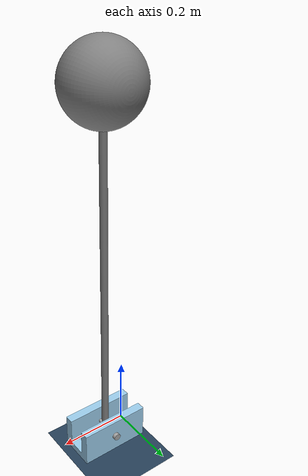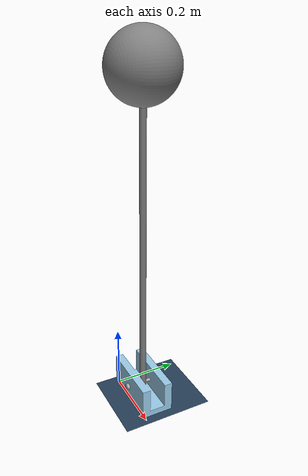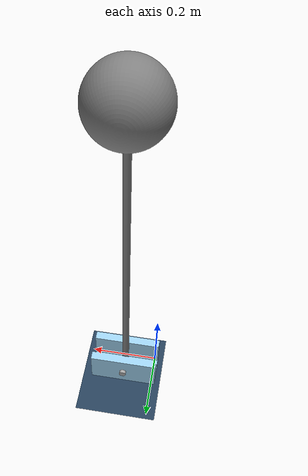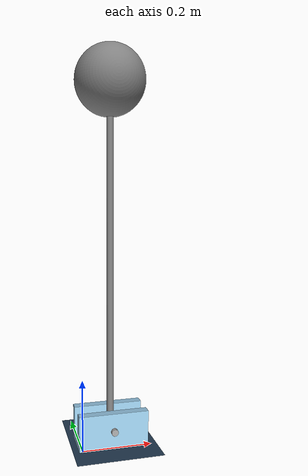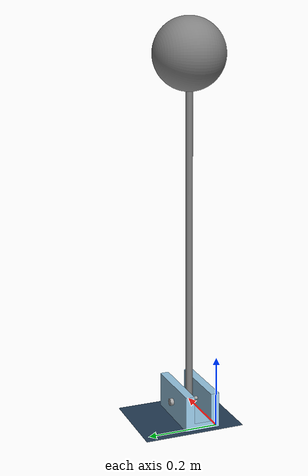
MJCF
<mujoco model="scene">
    <include file="robot.xml" />

    <visual>
        <headlight diffuse="0.6 0.6 0.6" ambient="0.3 0.3 0.3" specular="0 0 0" />
        <rgba haze="0.15 0.25 0.35 1" />
        <global azimuth="160" elevation="-20" />
    </visual>

    <asset>
        <texture type="skybox" builtin="gradient" rgb1="0.3 0.5 0.7" rgb2="0 0 0" width="512"
            height="3072" />
        <texture type="2d" name="groundplane" builtin="checker" mark="edge" rgb1="0.2 0.3 0.4"
            rgb2="0.1 0.2 0.3"
            markrgb="0.8 0.8 0.8" width="300" height="300" />
        <material name="groundplane" texture="groundplane" texuniform="true" texrepeat="5 5"
            reflectance="0.2" />
    </asset>

    <worldbody>
        <light pos="0 0 3.5" dir="0 0 -1" directional="true" />
        <geom name="floor" size="0 0 0.05" pos="0 0 0" type="plane" material="groundplane" contype="2" conaffinity="1"/>
    </worldbody>
</mujoco>

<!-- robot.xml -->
<!-- Generated using onshape-to-robot -->
<!-- Onshape https://cad.onshape.com/documents/2fcf687ab196ebe2e60237ac/w/8b1b349c9f98ae2313201f43/e/1ca3b9a7be0c82e6885a79aa -->
<mujoco model="inv_pendulum">
  <compiler angle="radian" meshdir="assets" autolimits="true"/>
  <default>
    <default class="inv_pendulum">
      <joint frictionloss="0.1" armature="0.005"/>
      <position kp="50" dampratio="1"/>
      <default class="visual">
        <geom type="mesh" contype="0" conaffinity="0" group="2"/>
      </default>
      <default class="collision">
        <geom group="3" contype="0" conaffinity="0"/>
      </default>
    </default>
  </default>
  <worldbody>
    <!-- Link holder -->
    <body name="holder" pos="0 0 0" quat="1 0 0 0" childclass="inv_pendulum">
      <inertial pos="0.09 0.0450675 0.0435425" mass="3.34493" fullinertia="0.00723064 0.0137955 0.0150381 -0 -0 -1.45824e-06"/>
      <!-- Part holder -->
      <geom type="mesh" class="visual" pos="-0.01 -0.005 0" quat="1 0 0 0" mesh="holder" material="holder_material"/>
      <geom type="mesh" class="collision" pos="-0.01 -0.005 0" quat="1 0 0 0" mesh="holder" material="holder_material"/>
      <!-- Part pin -->
      <geom type="mesh" class="visual" pos="0.14 -0.005 -0.05" quat="0.707107 -0 -0.707107 -0" mesh="pin" material="pin_material"/>
      <geom type="mesh" class="collision" pos="0.14 -0.005 -0.05" quat="0.707107 -0 -0.707107 -0" mesh="pin" material="pin_material"/>
      <!-- Link pendulum -->
      <body name="pendulum" pos="0.09 0.045 0.05" quat="0.707107 0.707107 -0 -0">
        <!-- Joint from holder to pendulum -->
        <joint axis="0 0 1" name="pend_pin" type="hinge" range="-50 50"/>
        <inertial pos="1.94e-10 0.945544 -3.57e-10" mass="4.70252" fullinertia="0.120567 0.0176412 0.120567 7.56e-10 -1.32e-10 -1.42e-09"/>
        <!-- Part pendulum -->
        <geom type="mesh" class="visual" pos="0 -0.02 0" quat="0.707107 -0.707107 -0 0" mesh="pendulum" material="pendulum_material"/>
        <geom type="mesh" class="collision" pos="0 -0.02 0" quat="0.707107 -0.707107 -0 0" mesh="pendulum" material="pendulum_material" contype="1" conaffinity="2"/>
      </body>
    </body>
  </worldbody>
  <asset>
    <mesh file="pendulum.stl"/>
    <mesh file="pin.stl"/>
    <mesh file="holder.stl"/>
    <material name="holder_material" rgba="0.615686 0.811765 0.929412 1"/>
    <material name="pin_material" rgba="0.647059 0.647059 0.647059 1"/>
    <material name="pendulum_material" rgba="0.498039 0.498039 0.498039 1"/>
  </asset>
  <actuator>
    <velocity class="inv_pendulum" name="pend_pin" joint="pend_pin" kv="50" ctrlrange="-50 50"/>
  </actuator>
  <equality/>
</mujoco>
